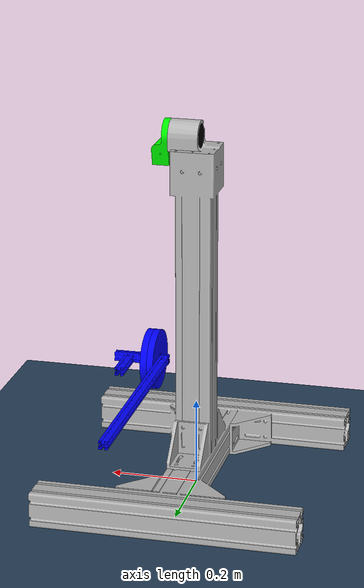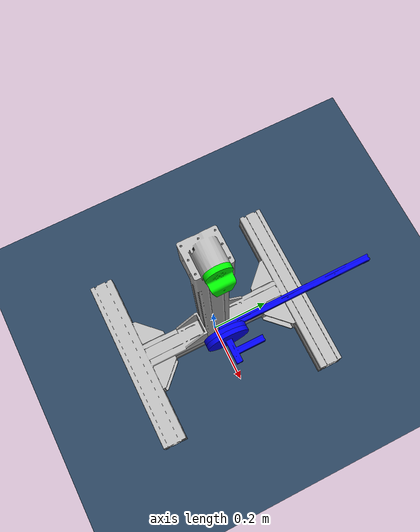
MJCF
<?xml version="1.0"?>
<mujoco model="Test scene">
  <compiler angle="radian"/>
  <!-- Global options -->
  <option timestep="0.002" gravity="0 0 -9.81"/>

  <!-- Default properties for joints and geoms -->
  <default>
    <joint armature="0.0" damping="0.0" frictionloss="0.0"/>
    <geom contype="1" conaffinity="1"/>
  </default>

  <!-- Assets: model meshes, scene textures, and materials -->
  <asset>
    <!-- Model meshes -->
    <mesh name="base_link"       file="meshes/base_link.stl"       scale="0.001 0.001 0.001"/>
    <mesh name="motor_1"         file="meshes/motor_1.stl"         scale="0.001 0.001 0.001"/>
    <mesh name="shaft_holder_1"  file="meshes/shaft_holder_1.stl"  scale="0.001 0.001 0.001"/>
    <mesh name="link_shaft_1"    file="meshes/link_shaft_1.stl"    scale="0.001 0.001 0.001"/>
    <mesh name="load1_1"         file="meshes/load1_1.stl"         scale="0.001 0.001 0.001"/>
    <mesh name="load2_1"         file="meshes/load2_1.stl"         scale="0.001 0.001 0.001"/>

    <!-- Materials -->
    <material name="base_link_mat"    rgba="0.7 0.7 0.7 1" specular="0.2" shininess="0.3"/>
    <material name="motor_mat"        rgba="0 0 0 1"       specular="0.5" shininess="0.8"/>
    <material name="shaft_holder_mat" rgba="0 1 0 1"       specular="0.3" shininess="0.5"/>
    <material name="shaft_mat"        rgba="0 0 1 1"       specular="0.3" shininess="0.5"/>
    <!-- If you want separate materials for loads, add here -->

    <!-- Scene textures -->
    <texture type="skybox" builtin="gradient" rgb1="0.3 0.5 0.7" rgb2="0 0 0" width="512" height="3072"/>
    <texture type="2d" name="groundplane" builtin="checker" mark="edge"
             rgb1="0.2 0.3 0.4" rgb2="0.1 0.2 0.3" markrgb="0.8 0.8 0.8"
             width="200" height="200"/>
    <material name="groundplane" texture="groundplane" texuniform="true" texrepeat="4 4" reflectance="0.2"/>
  </asset>

  <!-- Visual settings -->
  <statistic center="0 0 0.5" extent="0.6" meansize="0.04"/>
  <visual>
    <headlight diffuse="0.6 0.6 0.6" ambient="0.3 0.3 0.3" specular="0.1 0.1 0.1"/>
    <rgba haze="0.15 0.25 0.35 1"/>
    <global azimuth="180" elevation="-20"/>
    <quality shadowsize="4096"/>
  </visual>

  <!-- World body: model + scene -->
  <worldbody>
    <!-- Base link -->
    <body name="base_link" pos="0 0 0">
      <inertial pos="0.000420846 -0.00044119 0.19492273" quat="1 0 0 0"
                mass="20.48580845402662"
                diaginertia="2.220232 1.624764 1.140571"/>
      <geom type="mesh" mesh="base_link" contype="0" conaffinity="0" material="base_link_mat" pos="0 0 0"/>

      <!-- Motor assembly -->
      <body name="motor_1" pos="-0.009823 -0.001851 0.825665">
        <inertial pos="0.028557231053538294 -0.0000386482 0.0000153751" quat="1 0 0 0"
                  mass="1.058015460717901"
                  diaginertia="0.000397 0.000489 0.000486"/>
        <geom type="mesh" mesh="motor_1" contype="0" conaffinity="0" material="motor_mat" pos="0.009823 0.001851 -0.825665"/>

        <body name="shaft_holder_1" pos="0.0605 0 0">
          <joint name="revolute_2" type="hinge" axis="-1 0 0" pos="0 0 0" frictionloss="0.1"/>
          <inertial pos="0.020465967900001214 0.00000648878 -0.021949960695914705" quat="1 0 0 0"
                    mass="0.1358745985828141"
                    diaginertia="0.00013 0.00011 0.000057"/>
          <geom type="mesh" mesh="shaft_holder_1" contype="0" conaffinity="0" material="shaft_holder_mat" pos="-0.050677 0.001851 -0.825665"/>

          <body name="link_shaft_1" pos="0.025 0 -0.024003">
            <inertial pos="0.015509071288393905 0.0 -0.3214147910426002" quat="1 0 0 0"
                      mass="0.379461773552114"
                      diaginertia="0.010097 0.010392 0.000325"/>
            <geom type="mesh" mesh="link_shaft_1" contype="0" conaffinity="0" material="shaft_mat" pos="-0.075677 0.001851 -0.801662"/>

            <body name="load1_1" pos="0.01 0 -0.508419">
              <inertial pos="0.007500165005516757 0 0" quat="1 0 0 0"
                        mass="1.0003873323814827"
                        diaginertia="0.002403 0.00122 0.00122"/>
              <geom type="mesh" mesh="load1_1" contype="0" conaffinity="0" material="shaft_mat" pos="-0.085677 0.001851 -0.293243"/>

              <body name="load2_1" pos="0.015 0 0">
                <inertial pos="0.007500165005516729 0 0" quat="1 0 0 0"
                          mass="1.0003873323814827"
                          diaginertia="0.002403 0.00122 0.00122"/>
                <geom type="mesh" mesh="load2_1" contype="0" conaffinity="0" material="shaft_mat" pos="-0.100677 0.001851 -0.293243"/>
              </body>
            </body>
          </body>
        </body>
      </body>
    </body>

    <light pos="0 0 2" dir="0 0 -1" directional="true"/>
    <geom name="floor" type="plane" pos="0 0 0" size="10 10 0.05" material="groundplane"/>
  </worldbody>

  <contact>
    <exclude body1="motor_1" body2="shaft_holder_1"/>
    <exclude body1="shaft_holder_1" body2="base_link"/>
    <exclude body1="link_shaft_1" body2="load1_1"/>
    <exclude body1="link_shaft_1" body2="load2_1"/>
    <exclude body1="load1_1" body2="load2_1"/>
  </contact>

  <actuator>
    <position name="revolute_2_act" joint="revolute_2" kp="150" kv="5.0" gear="1" ctrlrange="-6.2832 6.2832"/>
  </actuator>

  <sensor>
    <jointpos joint="revolute_2" name="revolute_2_pos"/>
    <jointvel joint="revolute_2" name="revolute_2_vel"/>
  </sensor>

  <keyframe>
    <key name="home" ctrl="0"/>
  </keyframe>
</mujoco>
